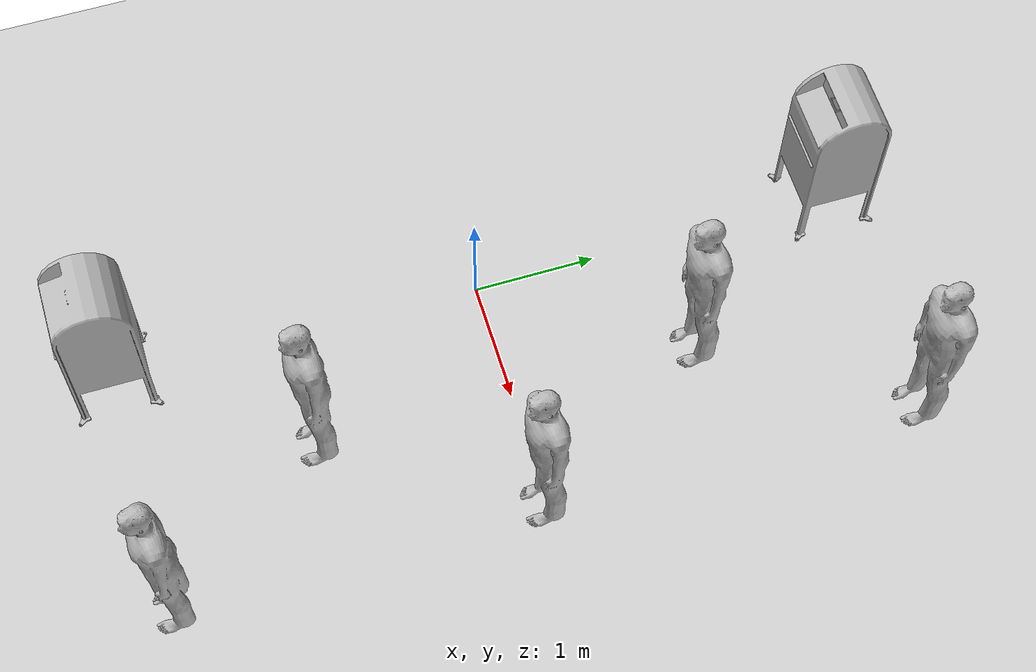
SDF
<sdf version="1.7">
 <world name="default">
  <light name="sun" type="directional">
   <pose>0 0 10 0 -0 0</pose>
   <diffuse>0.8 0.8 0.8 1</diffuse>
   <specular>0.2 0.2 0.2 1</specular>
   <attenuation>
    <range>1000</range>
    <constant>0.9</constant>
    <linear>0.01</linear>
    <quadratic>0.001</quadratic>
   </attenuation>
   <direction>-0.5 0.1 -0.9</direction>
   <spot><inner_angle>0</inner_angle><outer_angle>0</outer_angle><falloff>0</falloff></spot>
  </light>
  <model name="ground_plane">
   <static>1</static>
   <link name="link">
    <collision name="collision">
     <geometry><plane><normal>0 0 1</normal><size>100 100</size></plane></geometry>
     <surface>
      <contact><collide_bitmask>65535</collide_bitmask></contact>
      <friction><ode><mu>100</mu><mu2>50</mu2></ode></friction>
     </surface>
    </collision>
    <visual name="visual">
     <cast_shadows>0</cast_shadows>
     <geometry><plane><normal>0 0 1</normal><size>100 100</size></plane></geometry>
     <material>
      <script><uri>file://media/materials/scripts/gazebo.material</uri><name>Gazebo/Grey</name></script>
     </material>
    </visual>
   </link>
  </model>
  <gravity>0 0 -9.8</gravity>
  <magnetic_field>6e-06 2.3e-05 -4.2e-05</magnetic_field>
  <atmosphere type="adiabatic"/>
  <physics type="ode">
   <max_step_size>0.001</max_step_size>
   <real_time_factor>1</real_time_factor>
   <real_time_update_rate>1000</real_time_update_rate>
  </physics>
  <scene><ambient>0.4 0.4 0.4 1</ambient><background>0.7 0.7 0.7 1</background><shadows>1</shadows></scene>
  <spherical_coordinates>
   <surface_model>EARTH_WGS84</surface_model>
   <latitude_deg>0</latitude_deg>
   <longitude_deg>0</longitude_deg>
   <elevation>0</elevation>
   <heading_deg>0</heading_deg>
  </spherical_coordinates>
  <model name="person_standing">
   <link name="link">
    <inertial>
     <pose>0 -0.1 0.95 0 -0 0</pose>
     <mass>80</mass>
     <inertia><ixx>24.88</ixx><ixy>0</ixy><ixz>0</ixz><iyy>25.73</iyy><iyz>0</iyz><izz>2.48</izz></inertia>
    </inertial>
    <collision name="bottom">
     <pose>0 -0.1 0.01 0 -0 0</pose>
     <geometry><box><size>0.5 0.35 0.02</size></box></geometry>
    </collision>
    <collision name="human_collision_box">
     <pose>0 0 0.9 0 -0 0</pose>
     <geometry><box><size>0.4 0.4 1.8</size></box></geometry>
    </collision>
    <collision name="person">
     <pose>0 0 0.02 0.04 -0 0</pose>
     <geometry><mesh><uri>model://person_standing/meshes/standing.dae</uri></mesh></geometry>
    </collision>
    <visual name="visual">
     <pose>0 0 0.02 0.04 -0 0</pose>
     <geometry><mesh><uri>model://person_standing/meshes/standing.dae</uri></mesh></geometry>
    </visual>
   </link>
   <pose>1.96193 0.048275 0 -2e-06 -1e-06 7.3e-05</pose>
  </model>
  <model name="person_standing_0">
   <link name="link">
    <inertial>
     <pose>0 -0.1 0.95 0 -0 0</pose>
     <mass>80</mass>
     <inertia><ixx>24.88</ixx><ixy>0</ixy><ixz>0</ixz><iyy>25.73</iyy><iyz>0</iyz><izz>2.48</izz></inertia>
    </inertial>
    <collision name="bottom">
     <pose>0 -0.1 0.01 0 -0 0</pose>
     <geometry><box><size>0.5 0.35 0.02</size></box></geometry>
    </collision>
    <collision name="human_collision_box">
     <pose>0 0 0.9 0 -0 0</pose>
     <geometry><box><size>0.4 0.4 1.8</size></box></geometry>
    </collision>
    <collision name="person">
     <pose>0 0 0.02 0.04 -0 0</pose>
     <geometry><mesh><uri>model://person_standing/meshes/standing.dae</uri></mesh></geometry>
    </collision>
    <visual name="visual">
     <pose>0 0 0.02 0.04 -0 0</pose>
     <geometry><mesh><uri>model://person_standing/meshes/standing.dae</uri></mesh></geometry>
    </visual>
   </link>
   <pose>1.99654 3.12872 0 -1e-06 -1e-06 9e-06</pose>
  </model>
  <model name="person_standing_1">
   <link name="link">
    <inertial>
     <pose>0 -0.1 0.95 0 -0 0</pose>
     <mass>80</mass>
     <inertia><ixx>24.88</ixx><ixy>0</ixy><ixz>0</ixz><iyy>25.73</iyy><iyz>0</iyz><izz>2.48</izz></inertia>
    </inertial>
    <collision name="bottom">
     <pose>0 -0.1 0.01 0 -0 0</pose>
     <geometry><box><size>0.5 0.35 0.02</size></box></geometry>
    </collision>
    <collision name="human_collision_box">
     <pose>0 0 0.9 0 -0 0</pose>
     <geometry><box><size>0.4 0.4 1.8</size></box></geometry>
    </collision>
    <collision name="person">
     <pose>0 0 0.02 0.04 -0 0</pose>
     <geometry><mesh><uri>model://person_standing/meshes/standing.dae</uri></mesh></geometry>
    </collision>
    <visual name="visual">
     <pose>0 0 0.02 0.04 -0 0</pose>
     <geometry><mesh><uri>model://person_standing/meshes/standing.dae</uri></mesh></geometry>
    </visual>
   </link>
   <pose>0.999722 1.60578 0 3e-06 -2e-06 4.2e-05</pose>
  </model>
  <model name="person_standing_2">
   <link name="link">
    <inertial>
     <pose>0 -0.1 0.95 0 -0 0</pose>
     <mass>80</mass>
     <inertia><ixx>24.88</ixx><ixy>0</ixy><ixz>0</ixz><iyy>25.73</iyy><iyz>0</iyz><izz>2.48</izz></inertia>
    </inertial>
    <collision name="bottom">
     <pose>0 -0.1 0.01 0 -0 0</pose>
     <geometry><box><size>0.5 0.35 0.02</size></box></geometry>
    </collision>
    <collision name="human_collision_box">
     <pose>0 0 0.9 0 -0 0</pose>
     <geometry><box><size>0.4 0.4 1.8</size></box></geometry>
    </collision>
    <collision name="person">
     <pose>0 0 0.02 0.04 -0 0</pose>
     <geometry><mesh><uri>model://person_standing/meshes/standing.dae</uri></mesh></geometry>
    </collision>
    <visual name="visual">
     <pose>0 0 0.02 0.04 -0 0</pose>
     <geometry><mesh><uri>model://person_standing/meshes/standing.dae</uri></mesh></geometry>
    </visual>
   </link>
   <pose>0.965108 -1.48853 -8e-06 0 1e-06 5.2e-05</pose>
  </model>
  <model name="person_standing_3">
   <link name="link">
    <inertial>
     <pose>0 -0.1 0.95 0 -0 0</pose>
     <mass>80</mass>
     <inertia><ixx>24.88</ixx><ixy>0</ixy><ixz>0</ixz><iyy>25.73</iyy><iyz>0</iyz><izz>2.48</izz></inertia>
    </inertial>
    <collision name="bottom">
     <pose>0 -0.1 0.01 0 -0 0</pose>
     <geometry><box><size>0.5 0.35 0.02</size></box></geometry>
    </collision>
    <collision name="human_collision_box">
     <pose>0 0 0.9 0 -0 0</pose>
     <geometry><box><size>0.4 0.4 1.8</size></box></geometry>
    </collision>
    <collision name="person">
     <pose>0 0 0.02 0.04 -0 0</pose>
     <geometry><mesh><uri>model://person_standing/meshes/standing.dae</uri></mesh></geometry>
    </collision>
    <visual name="visual">
     <pose>0 0 0.02 0.04 -0 0</pose>
     <geometry><mesh><uri>model://person_standing/meshes/standing.dae</uri></mesh></geometry>
    </visual>
   </link>
   <pose>1.9827 -2.85919 0 1e-06 -0 5.2e-05</pose>
  </model>
  <model name="postbox">
   <static>1</static>
   <link name="link">
    <collision name="human_collision_box">
     <pose>0 0 0.9 0 -0 0</pose>
     <geometry><box><size>0.4 0.4 1.8</size></box></geometry>
    </collision>
    <visual name="visual"><geometry><mesh><uri>model://postbox/meshes/postbox.dae</uri></mesh></geometry></visual>
   </link>
   <pose>-0.010952 3.00405 0 0 -0 0</pose>
  </model>
  <model name="postbox_clone">
   <static>1</static>
   <link name="link">
    <collision name="human_collision_box">
     <pose>0 0 0.9 0 -0 0</pose>
     <geometry><box><size>0.4 0.4 1.8</size></box></geometry>
    </collision>
    <visual name="visual"><geometry><mesh><uri>model://postbox/meshes/postbox.dae</uri></mesh></geometry></visual>
   </link>
   <pose>-0.059412 -3.00457 0 0 -0 0</pose>
  </model>
 </world>
</sdf>
